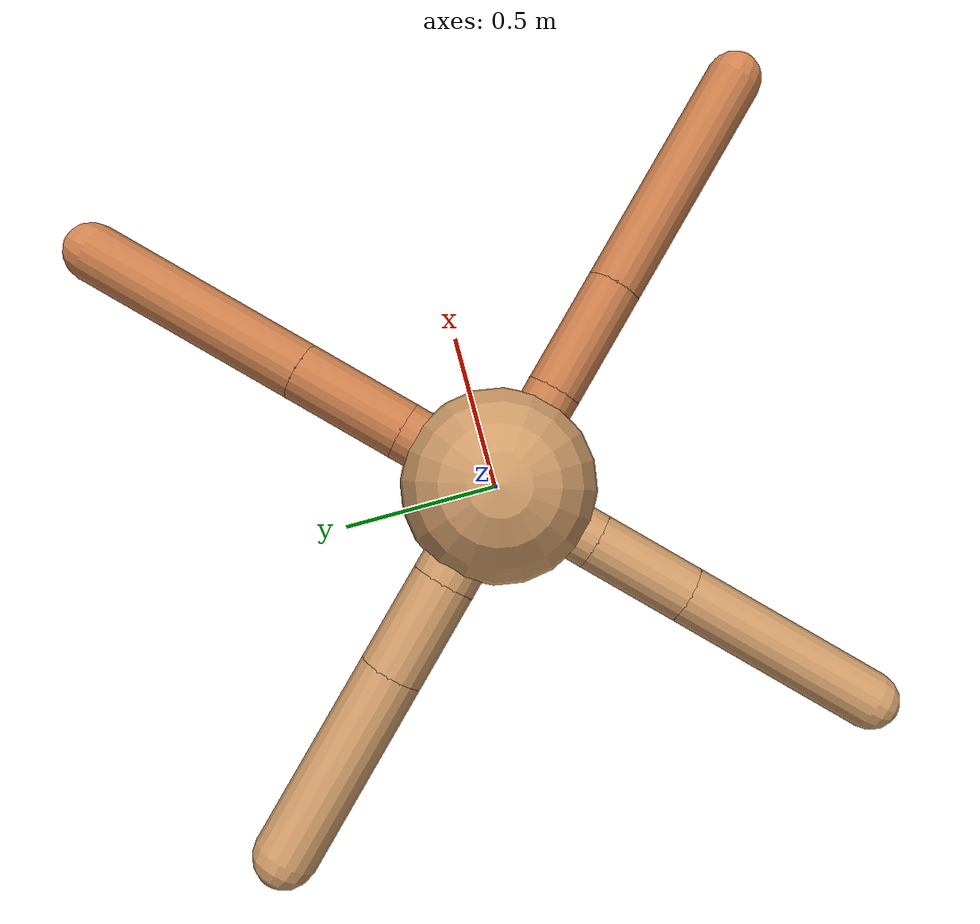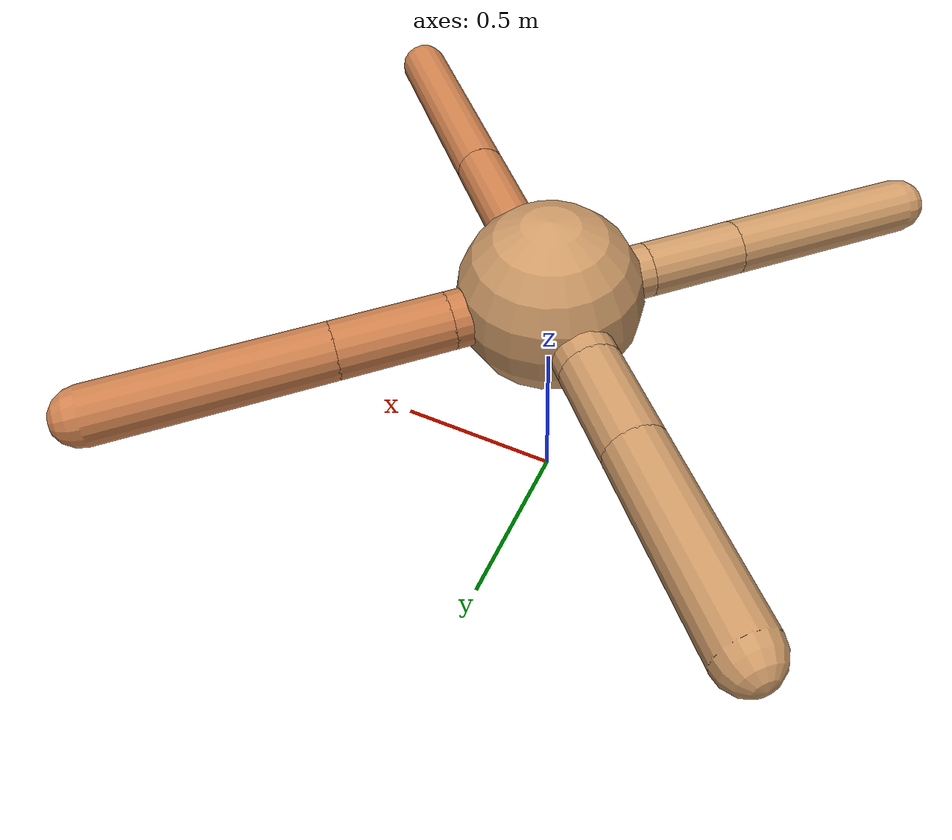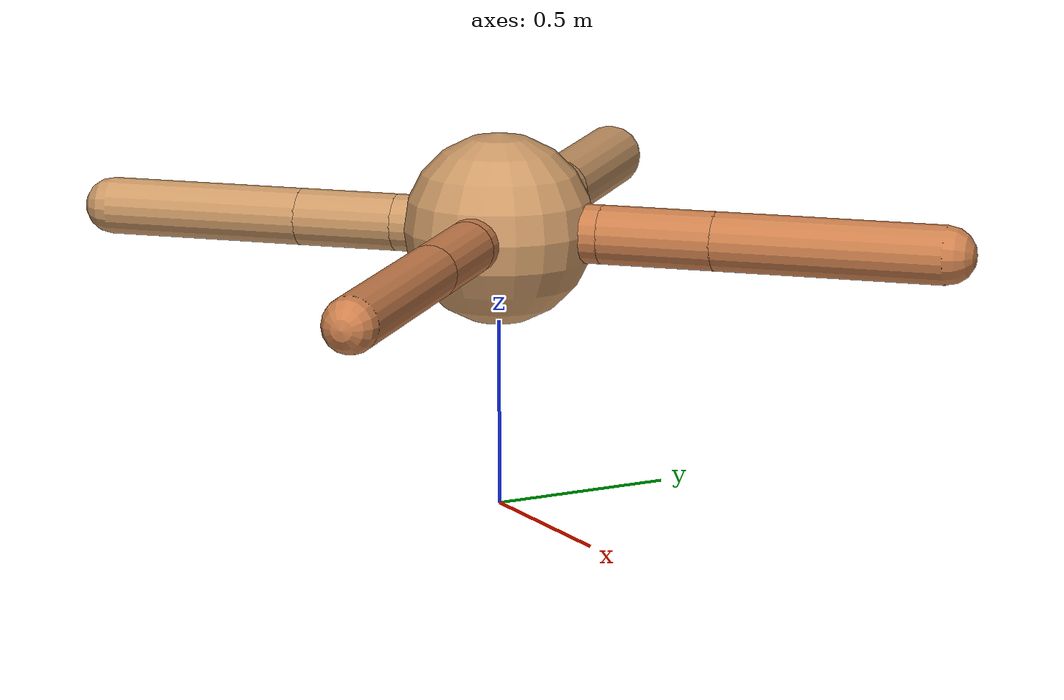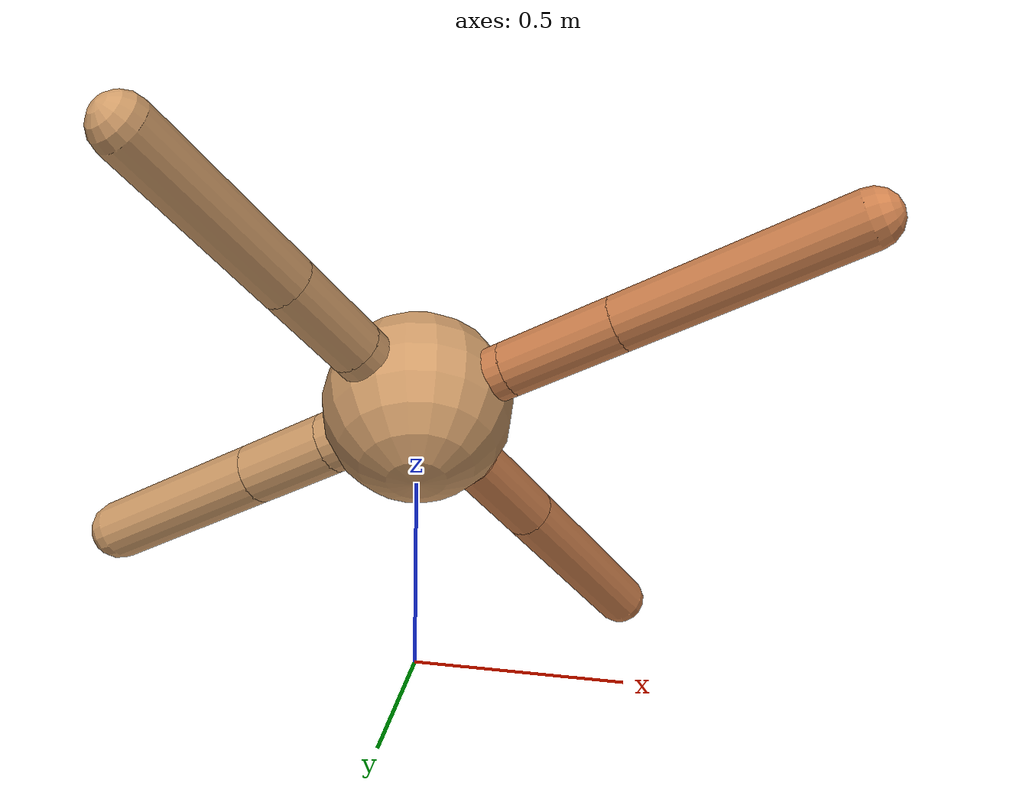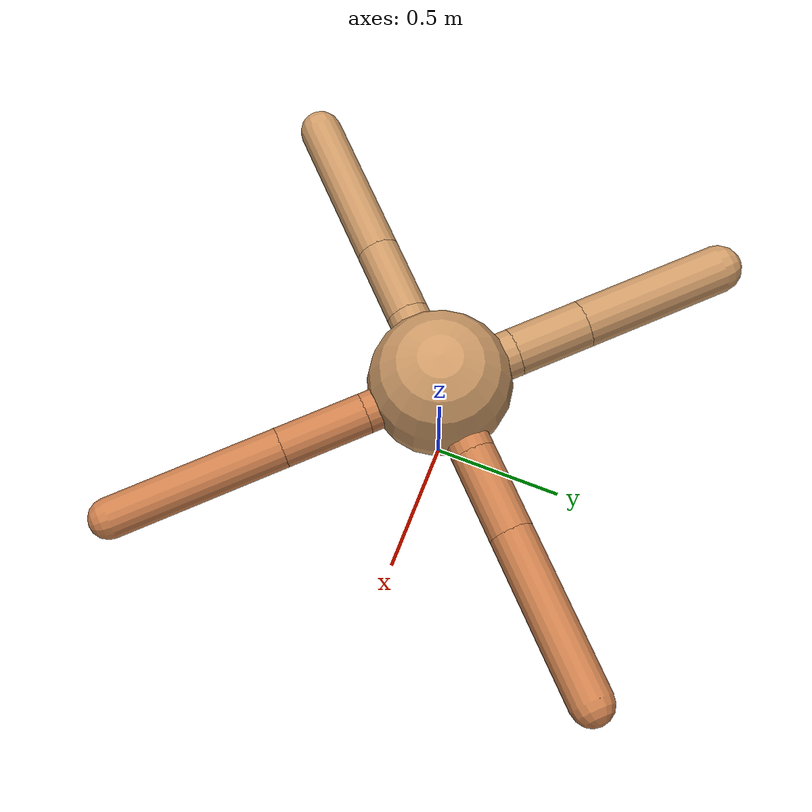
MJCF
<?xml version="1.0" ?>
<mujoco model="ant">

	<compiler angle="degree" coordinate="local" inertiafromgeom="true"/>

	<option integrator="RK4" timestep="0.01"/>

	<custom>

		<numeric data="0.0 0.0 0.55 1.0 0.0 0.0 0.0 0.0 1.0 0.0 -1.0 0.0 -1.0 0.0 1.0" name="init_qpos"/>

	</custom>

	<default>

		<joint armature="1" damping="1" limited="true"/>

		<geom conaffinity="0" condim="3" density="5.0" friction="1.5 0.1 0.1" margin="0.01" rgba="0.8 0.6 0.4 1"/>

	</default>

	<worldbody>

		<body name="torso" pos="0 0 0.75">

			<geom name="torso_geom" pos="0 0 0" size="0.25456991524642086" type="sphere"/>

			<!--joint armature="0" damping="0" limited="false" margin="0.01" name="root" pos="0 0 0" type="free"/-->

			<body name="front_left_leg" pos="0 0 0">

				<geom fromto="0 0 0 0.2 0.2 0" name="aux_1_geom" size="0.07807141970003736" type="capsule" rgba=".8 .5 .3 1"/>

				<body name="aux_1" pos="0.2 0.2 0">

					<joint axis="0 0 1" name="hip_1" pos="0.0 0.0 0.0" range="-40 40" type="hinge"/>

					<geom fromto="0 0 0 0.21708810469970025 0.21708810469970025 0" name="left_leg_geom" size="0.07807141970003736" type="capsule" rgba=".8 .5 .3 1"/>

					<body pos="0.21708810469970025 0.21708810469970025 0" name="front_left_foot">

						<joint axis="-1 1 0" name="ankle_1" pos="0.0 0.0 0.0" range="30 100" type="hinge"/>

						<geom fromto="0 0 0 0.4341762093994005 0.4341762093994005 0" name="left_ankle_geom" size="0.07807141970003736" type="capsule" rgba=".8 .5 .3 1"/>

					</body>

				</body>

			</body>

			<body name="front_right_leg" pos="0 0 0">

				<geom fromto="0 0 0 -0.2 0.2 0" name="aux_2_geom" size="0.08625425016192789" type="capsule"/>

				<body name="aux_2" pos="-0.2 0.2 0">

					<joint axis="0 0 1" name="hip_2" pos="0.0 0.0 0.0" range="-40 40" type="hinge"/>

					<geom fromto="0 0 0 -0.1889115814716409 0.1889115814716409 0" name="right_leg_geom" size="0.08625425016192789" type="capsule"/>

					<body pos="-0.1889115814716409 0.1889115814716409 0" name="front_right_foot">

						<joint axis="1 1 0" name="ankle_2" pos="0.0 0.0 0.0" range="-100 -30" type="hinge"/>

						<geom fromto="0 0 0 -0.3778231629432818 0.3778231629432818 0" name="right_ankle_geom" size="0.08625425016192789" type="capsule"/>

					</body>

				</body>

			</body>

			<body name="left_back_leg" pos="0 0 0">

				<geom fromto="0 0 0 -0.2 -0.2 0" name="aux_3_geom" size="0.07584085527540388" type="capsule"/>

				<body name="aux_3" pos="-0.2 -0.2 0">

					<joint axis="0 0 1" name="hip_3" pos="0.0 0.0 0.0" range="-40 40" type="hinge"/>

					<geom fromto="0 0 0 -0.19035402704678694 -0.19035402704678694 0" name="back_leg_geom" size="0.07584085527540388" type="capsule"/>

					<body pos="-0.19035402704678694 -0.19035402704678694 0" name="left_back_foot">

						<joint axis="-1 1 0" name="ankle_3" pos="0.0 0.0 0.0" range="-100 -30" type="hinge"/>

						<geom fromto="0 0 0 -0.3807080540935739 -0.3807080540935739 0" name="third_ankle_geom" size="0.07584085527540388" type="capsule"/>

					</body>

				</body>

			</body>

			<body name="right_back_leg" pos="0 0 0">

				<geom fromto="0 0 0 0.2 -0.2 0" name="aux_4_geom" size="0.07265332385151109" type="capsule" rgba=".8 .5 .3 1"/>

				<body name="aux_4" pos="0.2 -0.2 0">

					<joint axis="0 0 1" name="hip_4" pos="0.0 0.0 0.0" range="-40 40" type="hinge"/>

					<geom fromto="0 0 0 0.21914989011544722 -0.21914989011544722 0" name="rightback_leg_geom" size="0.07265332385151109" type="capsule" rgba=".8 .5 .3 1"/>

					<body pos="0.21914989011544722 -0.21914989011544722 0" name="right_back_foot">

						<joint axis="1 1 0" name="ankle_4" pos="0.0 0.0 0.0" range="30 100" type="hinge"/>

						<geom fromto="0 0 0 0.43829978023089444 -0.43829978023089444 0" name="fourth_ankle_geom" size="0.07265332385151109" type="capsule" rgba=".8 .5 .3 1"/>

					</body>

				</body>

			</body>

		</body>

	</worldbody>

	<actuator>

		<motor ctrllimited="true" ctrlrange="-1.0 1.0" joint="hip_4" gear="150"/>

		<motor ctrllimited="true" ctrlrange="-1.0 1.0" joint="ankle_4" gear="150"/>

		<motor ctrllimited="true" ctrlrange="-1.0 1.0" joint="hip_1" gear="150"/>

		<motor ctrllimited="true" ctrlrange="-1.0 1.0" joint="ankle_1" gear="150"/>

		<motor ctrllimited="true" ctrlrange="-1.0 1.0" joint="hip_2" gear="150"/>

		<motor ctrllimited="true" ctrlrange="-1.0 1.0" joint="ankle_2" gear="150"/>

		<motor ctrllimited="true" ctrlrange="-1.0 1.0" joint="hip_3" gear="150"/>

		<motor ctrllimited="true" ctrlrange="-1.0 1.0" joint="ankle_3" gear="150"/>

	</actuator>

</mujoco>
